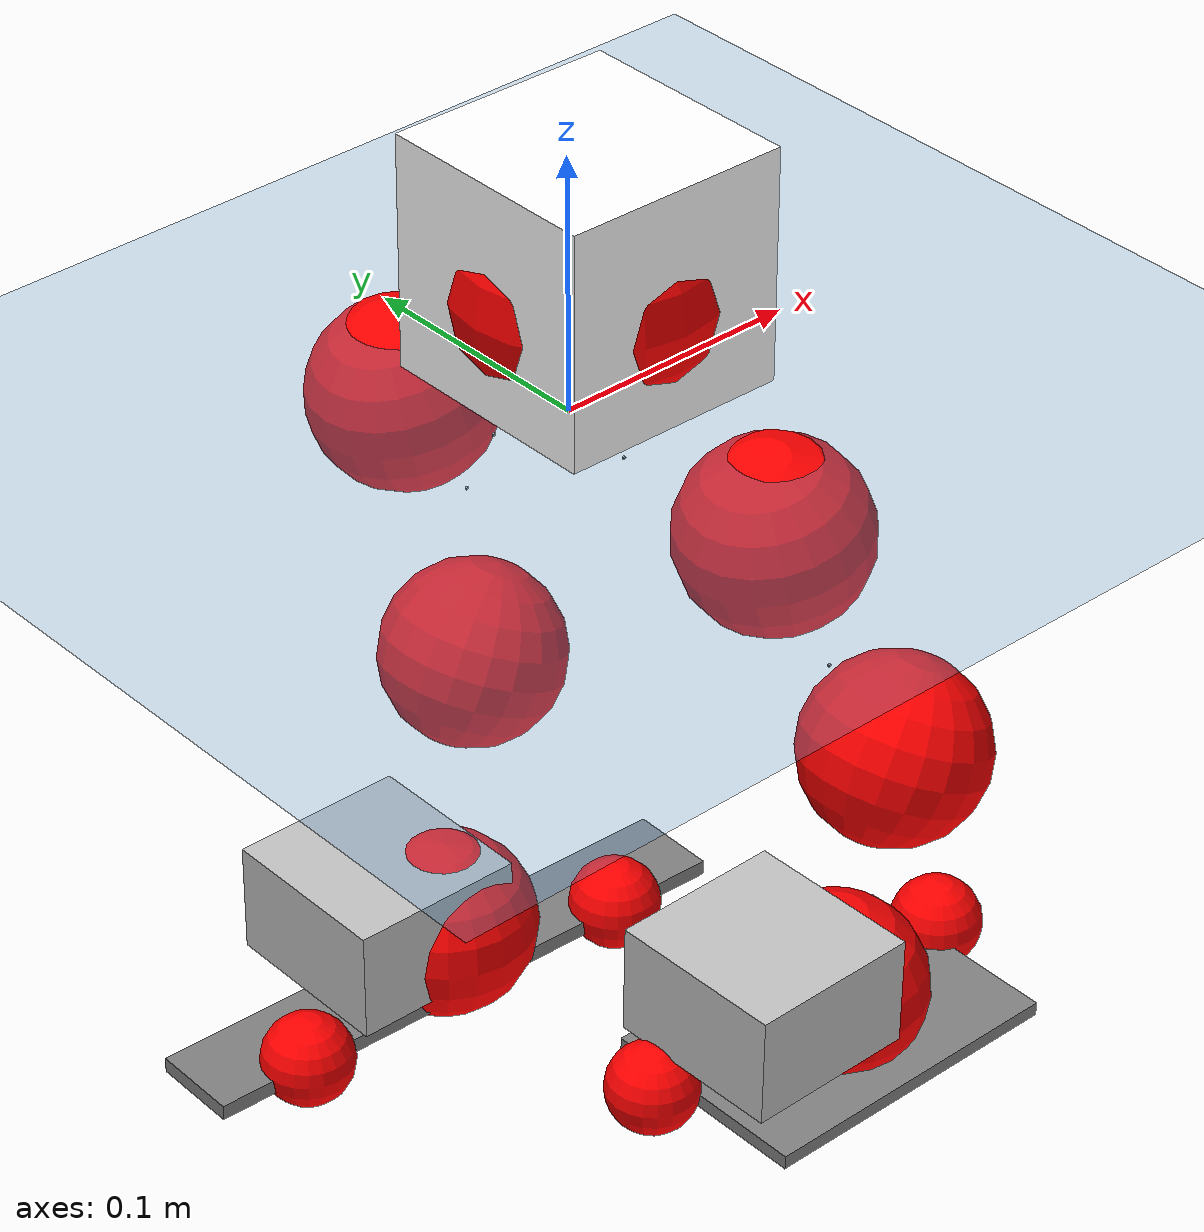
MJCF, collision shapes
<mujoco model="pi_12dof_release_v1">
  <compiler angle="radian" assetdir="assets" balanceinertia="true" inertiafromgeom="false"/>

  <option timestep="0.005" density="1.2" viscosity="2e-05"/>

  <size nkey="1"/>

  <visual>
    <quality shadowsize="8192"/>
    <map shadowclip="0.5"/>
  </visual>

  <default>
    <default class="/">
      <joint armature="0.01" damping="0.01" frictionloss="0.01"/>
      <geom contype="0" conaffinity="0" group="1" solref="-1000 -80"/>
      <site size="0.01 0.005 0.005" group="5"/>
      <general forcelimited="true" biastype="affine" gainprm="20" biasprm="0 -20 -0.5"/>
      <default class="foot">
        <geom size="0.0845 0.036 0.005" type="box" condim="6" group="4" priority="1" friction="0.9 0.2 0.2" solimp="0.015 1 0.005"/>
      </default>
      <default class="reward_collision_sphere">
        <geom group="5" rgba="1 0 0 1"/>
      </default>
    </default>
  </default>

  <asset>
    <texture type="skybox" colorspace="auto" name="//unnamed_texture_0" builtin="gradient" rgb1="0.95 0.95 0.95" rgb2="0.95 0.95 0.95" width="100" height="600"/>
    <texture type="2d" colorspace="auto" name="texplane" builtin="checker" rgb1="0.345 0.575 0.748" rgb2="0.345 0.575 0.748" markrgb="1 1 1" width="512" height="512"/>
    <material name="MatPlane" class="/" texture="texplane" texuniform="true" texrepeat="2 2" specular="0.9"/>
    <mesh name="baselink_1" class="/" file="baselink_1.STL"/>
    <mesh name="r_hip_pitch_link" class="/" file="r_hip_pitch_link.STL"/>
    <mesh name="r_hip_roll_link" class="/" file="r_hip_roll_link.STL"/>
    <mesh name="r_thigh_link" class="/" file="r_thigh_link.STL"/>
    <mesh name="r_calf_link" class="/" file="r_calf_link.STL"/>
    <mesh name="r_ankle_pitch_link" class="/" file="r_ankle_pitch_link.STL"/>
    <mesh name="r_ankle_roll_link" class="/" file="r_ankle_roll_link.STL"/>
    <mesh name="l_hip_pitch_link" class="/" file="l_hip_pitch_link.STL"/>
    <mesh name="l_hip_roll_link" class="/" file="l_hip_roll_link.STL"/>
    <mesh name="l_thigh_link" class="/" file="l_thigh_link.STL"/>
    <mesh name="l_calf_link" class="/" file="l_calf_link.STL"/>
    <mesh name="l_ankle_pitch_link" class="/" file="l_ankle_pitch_link.STL"/>
    <mesh name="l_ankle_roll_link" class="/" file="l_ankle_roll_link.STL"/>
  </asset>

  <worldbody>
    <geom name="floor" class="/" size="100 100 0.125" type="plane" group="0" material="MatPlane"/>
    <light name="toplight_shadow" class="/" pos="0 0 5" dir="0.0990148 0.0990148 -0.990148" type="directional" ambient="0.04 0.04 0.04" diffuse="0.55 0.55 0.55" specular="0.12 0.12 0.12"/>
    <light name="toplight_fill" class="/" pos="0 0 5" dir="0.0990148 0.0990148 -0.990148" type="directional" castshadow="false" ambient="0.04 0.04 0.04" diffuse="0.3 0.3 0.3" specular="0.08 0.08 0.08"/>
    <body name="trunk" pos="0.00730015 -0.00105752 -0.00861551" quat="0.999988 -0.00158728 0.00442813 -0.00152645">
      <inertial pos="0.0211697 0.0153242 0.0431679" quat="0.681628 0.00700014 -0.0183732 0.731434" mass="1.20418" diaginertia="0.0147698 0.0027021 0.0014401"/>
      <joint name="//unnamed_joint_0" type="free"/>
      <geom name="//unnamed_geom_1" class="/" type="mesh" density="0" rgba="1 1 1 1" mesh="baselink_1"/>
      <geom name="//unnamed_geom_2" class="/" size="0.0453467 0.0453467 0.0453467" pos="0 0 0.0664406" type="box" rgba="1 1 1 1"/>
      <geom name="//unnamed_geom_3" class="reward_collision_sphere" size="0.0498814" pos="0 0 0.0581355"/>
      <site name="imu" class="/" pos="-0.08272 0.000347491 0.0824391" size="0.00906934"/>
      <camera name="track" class="/" pos="0 -1.57847 0" quat="0.707107 0.707107 0 0" mode="trackcom"/>
      <camera name="ego_camera" class="/" pos="0.0825797 0 0.149491" quat="-0.5 -0.5 0.5 0.5"/>
      <body name="r_hip_pitch_link" pos="0.013827 -0.00397815 -0.0170454" quat="0.992458 -0.00110363 -0.122573 0.00103707">
        <inertial pos="0.00133193 -0.0298721 0.00400878" quat="-0.0173638 0.706754 -0.0303102 0.706596" mass="0.294369" diaginertia="0.000210121 4.36596e-05 3.9988e-05"/>
        <joint name="r_hip_pitch_joint" class="/" pos="0 0 0" axis="0.0455768 -0.99895 0.00472012" range="-1.83047 1.59251" armature="0.0162308" damping="0.0427823" frictionloss="0.0134062"/>
        <geom name="//unnamed_geom_4" class="/" type="mesh" density="0" rgba="0.75294 0.75294 0.75294 1" mesh="r_hip_pitch_link"/>
        <geom name="//unnamed_geom_5" class="/" size="0.000453467 0.000453467 0.000453467" type="box" rgba="0.75294 0.75294 0.75294 1"/>
        <body name="r_hip_roll_link" pos="0.0115499 -0.062159 -0.0102391" quat="0.999968 0.00493229 0.00493731 0.00383767">
          <inertial pos="-0.00508083 0.000257647 -0.0615676" quat="0.748041 -0.0486591 -0.0575173 0.659362" mass="0.355054" diaginertia="0.000574052 0.000109753 4.81605e-05"/>
          <joint name="r_hip_roll_joint" class="/" pos="0 0 0" axis="-0.997784 -0.0354212 0.0563183" stiffness="0.0152052" range="-0.218886 0.424594" armature="0.0141678" damping="0.0832539" frictionloss="0.00137189"/>
          <geom name="//unnamed_geom_6" class="/" type="mesh" density="0" rgba="0.75294 0.75294 0.75294 1" mesh="r_hip_roll_link"/>
          <geom name="//unnamed_geom_7" class="/" size="0.000453467 0.000453467 0.000453467" type="box" rgba="0.75294 0.75294 0.75294 1"/>
          <geom name="//unnamed_geom_8" class="reward_collision_sphere" size="0.0362774"/>
          <body name="r_thigh_link" pos="0.000906273 -0.0158575 -0.0549027" quat="0.999994 0.00337821 0.000594137 0.000293375">
            <inertial pos="0.00191281 -0.00553278 -0.0292421" quat="0.741394 0.670983 0.00426396 0.00993334" mass="0.0884359" diaginertia="0.000257503 2.9388e-05 2.25898e-05"/>
            <joint name="r_thigh_joint" class="/" pos="0 0 0" axis="0.0284529 0.00497565 -0.999583" range="-0.0381108 0.708224" armature="0.000638827" damping="0.0409888" frictionloss="0.00427835"/>
            <geom name="//unnamed_geom_9" class="/" type="mesh" density="0" rgba="0.75294 0.75294 0.75294 1" mesh="r_thigh_link"/>
            <geom name="//unnamed_geom_10" class="/" size="0.000453467 0.000453467 0.000453467" type="box" rgba="0.75294 0.75294 0.75294 1"/>
            <body name="r_calf_link" pos="0.0168902 -0.00697926 -0.0517281" quat="0.947635 -0.000169962 0.319355 0.000178065">
              <inertial pos="0.0118076 0.0178321 -0.0454975" quat="0.99566 -0.0836594 0.0103088 0.0394489" mass="0.59186" diaginertia="0.00622671 0.000790409 7.48924e-05"/>
              <joint name="r_calf_joint" class="/" pos="0 0 0" axis="-0.0627197 -0.997981 0.00998375" range="-1.64252 0.458891" armature="0.0142802" damping="0.0433213" frictionloss="0.0071904"/>
              <geom name="//unnamed_geom_11" class="/" type="mesh" density="0" rgba="0.75294 0.75294 0.75294 1" mesh="r_calf_link"/>
              <geom name="//unnamed_geom_12" class="/" size="0.000453467 0.000453467 0.000453467" type="box" rgba="0.75294 0.75294 0.75294 1"/>
              <geom name="//unnamed_geom_13" class="reward_collision_sphere" size="0.0362774"/>
              <body name="r_ankle_pitch_link" pos="-0.0109241 0.0108589 -0.101413" quat="0.979318 -0.00468243 -0.202224 0.0044845">
                <inertial pos="-0.0114772 0.0107172 0.0113272" quat="0.0186284 0.667876 0.0119504 0.743944" mass="0.116464" diaginertia="0.000617664 8.67048e-05 4.04138e-05"/>
                <joint name="r_ankle_pitch_joint" class="/" pos="0 0 0" axis="-0.0492896 -0.997985 0.0399477" stiffness="0.0651591" range="-1.60995 0.251006" armature="0.00406149" damping="0.0792116" frictionloss="0.011123"/>
                <geom name="//unnamed_geom_14" class="/" type="mesh" density="0" rgba="0.75294 0.75294 0.75294 1" mesh="r_ankle_pitch_link"/>
                <geom name="//unnamed_geom_15" class="/" size="0.0353704 0.0362774 0.0226734" type="box" rgba="0.75294 0.75294 0.75294 1"/>
                <body name="r_ankle_roll_link" pos="0.0944644 0.000760698 -0.00507019" quat="0.999984 0.00412123 -0.000621148 -0.00385872">
                  <inertial pos="-0.0123561 0.000818854 -0.0119767" quat="0.565463 0.395934 0.503738 0.519361" mass="0.272808" diaginertia="0.00133085 0.00029277 9.04645e-05"/>
                  <joint name="r_ankle_roll_joint" class="/" pos="0 0 0" axis="-0.998479 -0.0542128 -0.0100246" stiffness="0.0193355" range="-0.397697 0.105121" armature="0.0013377" damping="0" frictionloss="0.00571285"/>
                  <geom name="//unnamed_geom_16" class="/" type="mesh" density="0" rgba="0.75294 0.75294 0.75294 1" mesh="r_ankle_roll_link"/>
                  <geom name="//unnamed_geom_17" class="/" type="mesh" rgba="0.75294 0.75294 0.75294 1" mesh="r_ankle_roll_link"/>
                  <geom name="right_foot" class="foot" size="0.0658326 0.0438548 0.0028665" pos="-0.0561542 0 -0.0365423"/>
                  <geom name="//unnamed_geom_19" class="reward_collision_sphere" size="0.0362774" pos="-0.0550531 0 -0.0166101"/>
                  <geom name="//unnamed_geom_20" class="reward_collision_sphere" size="0.0181387" pos="0.0165159 0.0157847 -0.0332203"/>
                  <geom name="//unnamed_geom_21" class="reward_collision_sphere" size="0.0181387" pos="-0.132128 0.0157847 -0.0332203"/>
                  <site name="right_foot" class="foot" pos="-0.0561542 0 -0.0365423" size="0.00906934"/>
                </body>
              </body>
            </body>
          </body>
        </body>
      </body>
      <body name="l_hip_pitch_link" pos="-0.0157073 0.0313084 -0.0122539" quat="0.992276 -0.000930091 -0.12404 0.00111282">
        <inertial pos="0.00118242 0.0301467 0.0170635" quat="-0.0670332 0.705411 -0.0358695 0.704709" mass="0.231728" diaginertia="0.000125289 2.75004e-05 3.56832e-05"/>
        <joint name="l_hip_pitch_joint" class="/" pos="0 0 0" axis="-0.0153734 0.99988 -0.00214554" stiffness="0.0625039" range="-1.36543 1.76772" armature="0.00761314" damping="0" frictionloss="0.014774"/>
        <geom name="//unnamed_geom_22" class="/" type="mesh" density="0" rgba="0.75294 0.75294 0.75294 1" mesh="l_hip_pitch_link"/>
        <geom name="//unnamed_geom_23" class="/" size="0.000453467 0.000453467 0.000453467" type="box" rgba="0.75294 0.75294 0.75294 1"/>
        <body name="l_hip_roll_link" pos="0.00133927 0.0543935 -0.00988438" quat="0.99999 -0.000811108 0.0018645 0.00398565">
          <inertial pos="0.0161932 -0.00827076 -0.0332175" quat="0.705859 -0.0702017 -0.0776652 0.700573" mass="0.376452" diaginertia="0.000767539 8.27979e-05 5.24468e-05"/>
          <joint name="l_hip_roll_joint" class="/" pos="0 0 0" axis="-0.999394 0.00696554 -0.0341125" stiffness="0.0159665" range="-0.672129 0.2462" armature="0.0121711" damping="0" frictionloss="0.0142069"/>
          <geom name="//unnamed_geom_24" class="/" type="mesh" density="0" rgba="0.75294 0.75294 0.75294 1" mesh="l_hip_roll_link"/>
          <geom name="//unnamed_geom_25" class="/" size="0.000453467 0.000453467 0.000453467" type="box" rgba="0.75294 0.75294 0.75294 1"/>
          <geom name="//unnamed_geom_26" class="reward_collision_sphere" size="0.0362774"/>
          <body name="l_thigh_link" pos="0.00923808 -0.00900939 -0.04935" quat="1 1.66319e-05 4.10584e-05 2.32318e-05">
            <inertial pos="-0.0106713 -0.0165244 -0.0312089" quat="0.704948 0.707928 0.0148978 0.0408081" mass="0.064963" diaginertia="0.000179642 1.79721e-05 1.57891e-05"/>
            <joint name="l_thigh_joint" class="/" pos="0 0 0" axis="0.0196991 0.0110629 -0.999745" stiffness="0.0756739" range="-0.263093 0.534252" armature="0.00564294" damping="0" frictionloss="0.00802557"/>
            <geom name="//unnamed_geom_27" class="/" type="mesh" density="0" rgba="0.75294 0.75294 0.75294 1" mesh="l_thigh_link"/>
            <geom name="//unnamed_geom_28" class="/" size="0.000453467 0.000453467 0.000453467" type="box" rgba="0.75294 0.75294 0.75294 1"/>
            <body name="l_calf_link" pos="-0.0185211 -0.00361212 -0.0678155" quat="0.947086 0.000641994 0.320979 -0.000362759">
              <inertial pos="0.0119494 -0.00796019 -0.0407461" quat="0.995292 0.0570795 -0.0751961 0.0219218" mass="0.607681" diaginertia="0.00691007 0.00127752 8.53644e-05"/>
              <joint name="l_calf_joint" class="/" pos="0 0 0" axis="0.0470672 0.997439 0.0538591" range="-0.608786 1.47692" armature="0.00735547" damping="0.0692627" frictionloss="0.00502868"/>
              <geom name="//unnamed_geom_29" class="/" type="mesh" density="0" rgba="0.75294 0.75294 0.75294 1" mesh="l_calf_link"/>
              <geom name="//unnamed_geom_30" class="/" size="0.000453467 0.000453467 0.000453467" type="box" rgba="0.75294 0.75294 0.75294 1"/>
              <geom name="//unnamed_geom_31" class="reward_collision_sphere" size="0.0362774"/>
              <body name="l_ankle_pitch_link" pos="-0.0173832 -0.00862059 -0.100529" quat="0.979359 0.00166902 -0.202023 -0.00638614">
                <inertial pos="0.00214152 -0.0121785 -0.00697703" quat="-0.00463625 0.704251 0.00384072 0.709926" mass="0.176821" diaginertia="0.000671547 8.23256e-05 5.79986e-05"/>
                <joint name="l_ankle_pitch_joint" class="/" pos="0 0 0" axis="0.0026734 0.999934 0.0112102" stiffness="0.000884595" range="-0.287211 1.54895" armature="0.0140367" damping="0.00602294" frictionloss="0.00474821"/>
                <geom name="//unnamed_geom_32" class="/" type="mesh" density="0" rgba="0.75294 0.75294 0.75294 1" mesh="l_ankle_pitch_link"/>
                <geom name="//unnamed_geom_33" class="/" size="0.0353704 0.0362774 0.0226734" type="box" rgba="0.75294 0.75294 0.75294 1"/>
                <body name="l_ankle_roll_link" pos="0.0759565 -0.0143429 0.00567221" quat="0.999966 0.000577419 0.00550998 -0.00615009">
                  <inertial pos="-0.0407334 0.0100248 -0.0196007" quat="0.600846 0.390997 0.397261 0.572965" mass="0.363953" diaginertia="0.00213926 0.000309756 0.000124883"/>
                  <joint name="l_ankle_roll_joint" class="/" pos="0 0 0" axis="-0.999991 -0.00343642 -0.00252742" stiffness="0.0820145" range="-0.454694 0.407143" armature="0.0018767" damping="0" frictionloss="0.00455744"/>
                  <geom name="//unnamed_geom_34" class="/" type="mesh" density="0" rgba="0.75294 0.75294 0.75294 1" mesh="l_ankle_roll_link"/>
                  <geom name="//unnamed_geom_35" class="/" type="mesh" rgba="0.75294 0.75294 0.75294 1" mesh="l_ankle_roll_link"/>
                  <geom name="left_foot" class="foot" size="0.116427 0.0179265 0.00308506" pos="-0.0561542 0 -0.0365423"/>
                  <geom name="//unnamed_geom_37" class="reward_collision_sphere" size="0.0362774" pos="-0.0550531 0 -0.0166101"/>
                  <geom name="//unnamed_geom_38" class="reward_collision_sphere" size="0.0181387" pos="0.0165159 -0.0157847 -0.0332203"/>
                  <geom name="//unnamed_geom_39" class="reward_collision_sphere" size="0.0181387" pos="-0.132128 -0.0157847 -0.0332203"/>
                  <site name="left_foot" class="foot" pos="-0.0561542 0 -0.0365423" size="0.00906934"/>
                </body>
              </body>
            </body>
          </body>
        </body>
      </body>
    </body>
  </worldbody>

  <contact>
    <pair class="/" geom1="floor" geom2="right_foot" name="//unnamed_contact_1"/>
    <pair class="/" geom1="floor" geom2="left_foot" name="//unnamed_contact_0"/>
  </contact>

  <actuator>
    <general name="r_hip_pitch_joint" class="/" joint="r_hip_pitch_joint" forcerange="-8.83104 8.83104" gainprm="26.6243" biasprm="0 -26.6243 -0.46941"/>
    <general name="r_hip_roll_joint" class="/" joint="r_hip_roll_joint" forcerange="-18.2781 18.2781" gainprm="26.6243" biasprm="0 -26.6243 -0.46941"/>
    <general name="r_thigh_joint" class="/" joint="r_thigh_joint" forcerange="-16.1824 16.1824" gainprm="26.6243" biasprm="0 -26.6243 -0.46941"/>
    <general name="r_calf_joint" class="/" joint="r_calf_joint" forcerange="-7.4029 7.4029" gainprm="26.6243" biasprm="0 -26.6243 -0.46941"/>
    <general name="r_ankle_pitch_joint" class="/" joint="r_ankle_pitch_joint" forcerange="-14.7855 14.7855" gainprm="26.6243" biasprm="0 -26.6243 -0.46941"/>
    <general name="r_ankle_roll_joint" class="/" joint="r_ankle_roll_joint" forcerange="-22.4081 22.4081" gainprm="26.6243" biasprm="0 -26.6243 -0.46941"/>
    <general name="l_hip_pitch_joint" class="/" joint="l_hip_pitch_joint" forcerange="-29.0531 29.0531" gainprm="26.6243" biasprm="0 -26.6243 -0.46941"/>
    <general name="l_hip_roll_joint" class="/" joint="l_hip_roll_joint" forcerange="-31.2623 31.2623" gainprm="26.6243" biasprm="0 -26.6243 -0.46941"/>
    <general name="l_thigh_joint" class="/" joint="l_thigh_joint" forcerange="-25.09 25.09" gainprm="26.6243" biasprm="0 -26.6243 -0.46941"/>
    <general name="l_calf_joint" class="/" joint="l_calf_joint" forcerange="-17.1364 17.1364" gainprm="26.6243" biasprm="0 -26.6243 -0.46941"/>
    <general name="l_ankle_pitch_joint" class="/" joint="l_ankle_pitch_joint" forcerange="-9.72763 9.72763" gainprm="26.6243" biasprm="0 -26.6243 -0.46941"/>
    <general name="l_ankle_roll_joint" class="/" joint="l_ankle_roll_joint" forcerange="-23.5628 23.5628" gainprm="26.6243" biasprm="0 -26.6243 -0.46941"/>
  </actuator>

  <sensor>
    <gyro site="imu" name="imu_angular_velocity"/>
    <velocimeter site="imu" name="imu_linear_velocity"/>
    <framelinvel objtype="site" objname="left_foot" name="left_foot_global_linear_velocity"/>
    <framelinvel objtype="site" objname="right_foot" name="right_foot_global_linear_velocity"/>
  </sensor>

  <keyframe>
    <key name="home" qpos="0 0 0.291 1 0 0 0 0.4 0 0 -0.8 0.4 0 -0.4 0 0 0.8 -0.4 0"/>
  </keyframe>
</mujoco>
